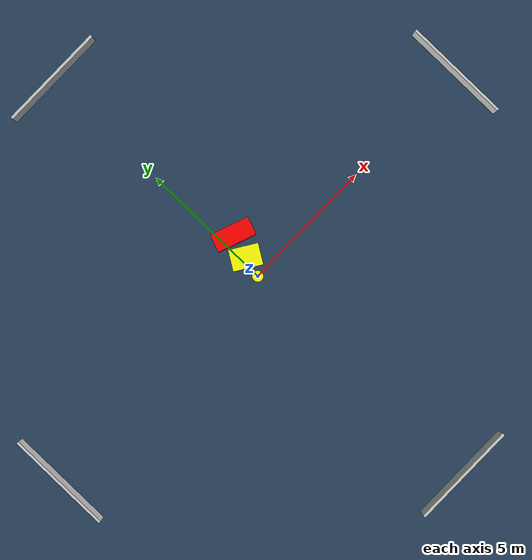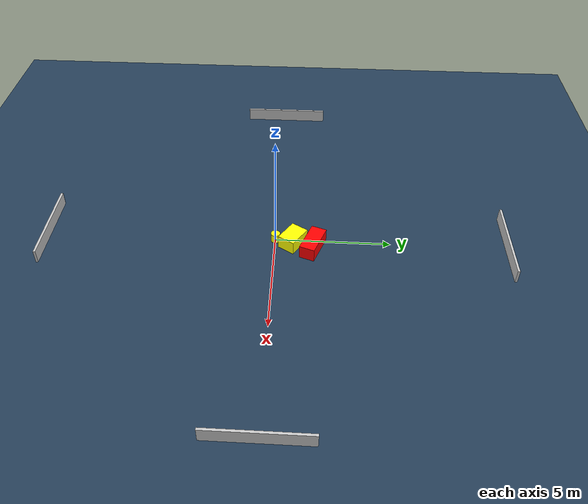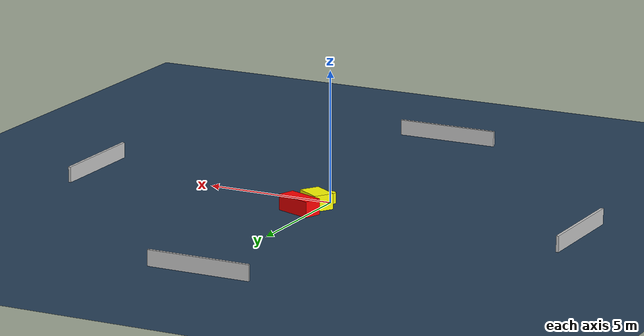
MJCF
<?xml version="1.0" ?>
<mujoco model="generated_environment">
  <option timestep="0.01" integrator="RK4" cone="elliptic"/>
  <default>
    <geom density="1"/>
  </default>
  <asset>
    <texture builtin="gradient" height="3072" name="skybox" rgb1="0.3 0.5 0.7" rgb2="0 0 0" type="skybox" width="512"/>
    <texture builtin="checker" height="300" name="groundplane" rgb1="0.2 0.3 0.4" rgb2="0.1 0.2 0.3" type="2d" width="300"/>
    <material name="groundplane" reflectance="0.2" texrepeat="5 5" texture="groundplane"/>
  </asset>
  <worldbody>
    <light dir="0 0 -1" directional="true" pos="0 0 1.5"/>
    <geom condim="3" friction="0.5 0.005 0.001" material="groundplane" name="floor" pos="0 0 0" size="0 0 0.05" type="plane"/>
    <body name="walls">
      <geom name="wall_1" condim="4" pos="-10.0 0.0 0.3" rgba="0.800000011920929 0.800000011920929 0.800000011920929 1.0" size="0.05 2.0 0.3" type="box"/>
      <geom name="wall_2" condim="4" pos="10.0 0.0 0.3" rgba="0.800000011920929 0.800000011920929 0.800000011920929 1.0" size="0.05 2.0 0.3" type="box"/>
      <geom name="wall_3" condim="4" pos="0.0 -10.0 0.3" rgba="0.800000011920929 0.800000011920929 0.800000011920929 1.0" size="2.0 0.05 0.3" type="box"/>
      <geom name="wall_4" condim="4" pos="0.0 10.0 0.3" rgba="0.800000011920929 0.800000011920929 0.800000011920929 1.0" size="2.0 0.05 0.3" type="box"/>
    </body>
    <body name="robot">
      <joint name="joint_x" type="slide" pos="0 0 0" axis="1 0 0"/>
      <joint name="joint_y" type="slide" pos="0 0 0" axis="0 1 0"/>
      <geom name="robot" type="cylinder" pos="0.0 0.0 0.2" size="0.2 0.2 0.0" mass="5.0" friction="1.0 0.005 0.0001" condim="4" rgba="1.0 1.0 0.0 1.0"/>
    </body>
    <body name="obstacle_1_movable">
      <geom name="obstacle_1_movable" condim="4" pos="0.18288277673328965 0.7634051064974131 0.3" euler="0 0 147.57620020128064" friction="0.0 0.005 0.001" rgba="1.0 1.0 0.0 1.0" size="0.5414466485590358 0.38891869770040266 0.3" type="box" mass="0.1"/>
      <joint type="free"/>
    </body>
    <body name="obstacle_2_static">
      <geom name="obstacle_2_static" condim="4" pos="0.4481549411923088 1.6335736478490526 0.3" euler="0 0 249.77404200278517" friction="0.0 0.005 0.001" rgba="1.0 0.0 0.0 1.0" size="0.33567019251444796 0.7327530849940314 0.3" type="box"/>
    </body>
  </worldbody>
  <actuator>
    <motor name="actuator_x" joint="joint_x" gear="1" ctrlrange="-1 1"/>
    <motor name="actuator_y" joint="joint_y" gear="1" ctrlrange="-1 1"/>
  </actuator>
</mujoco>
